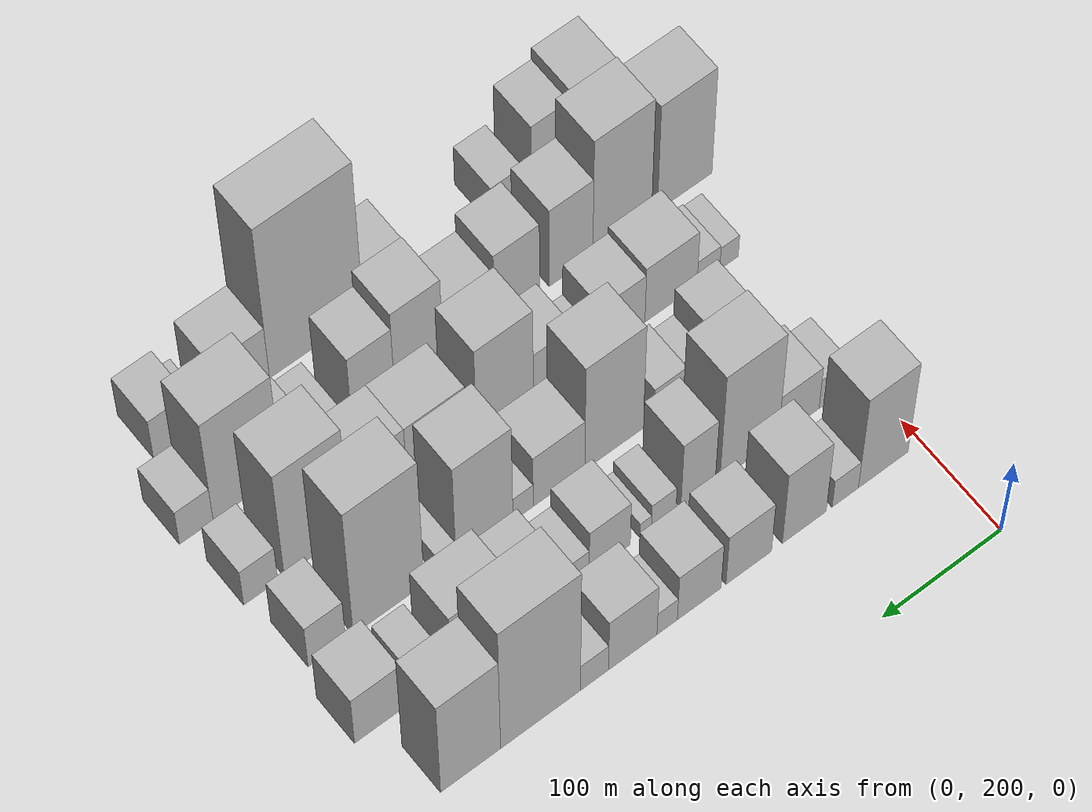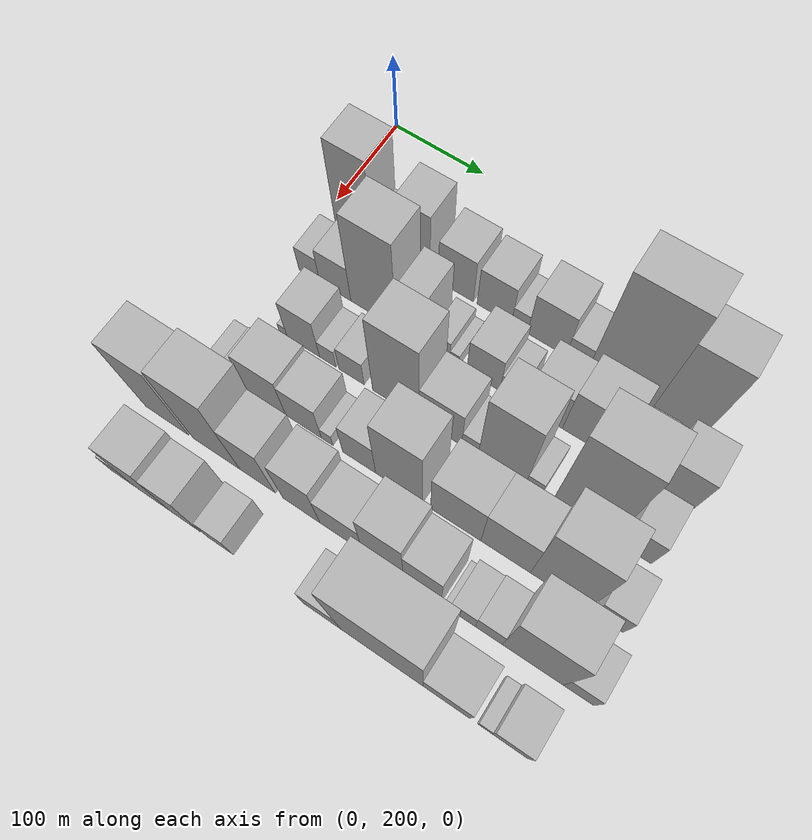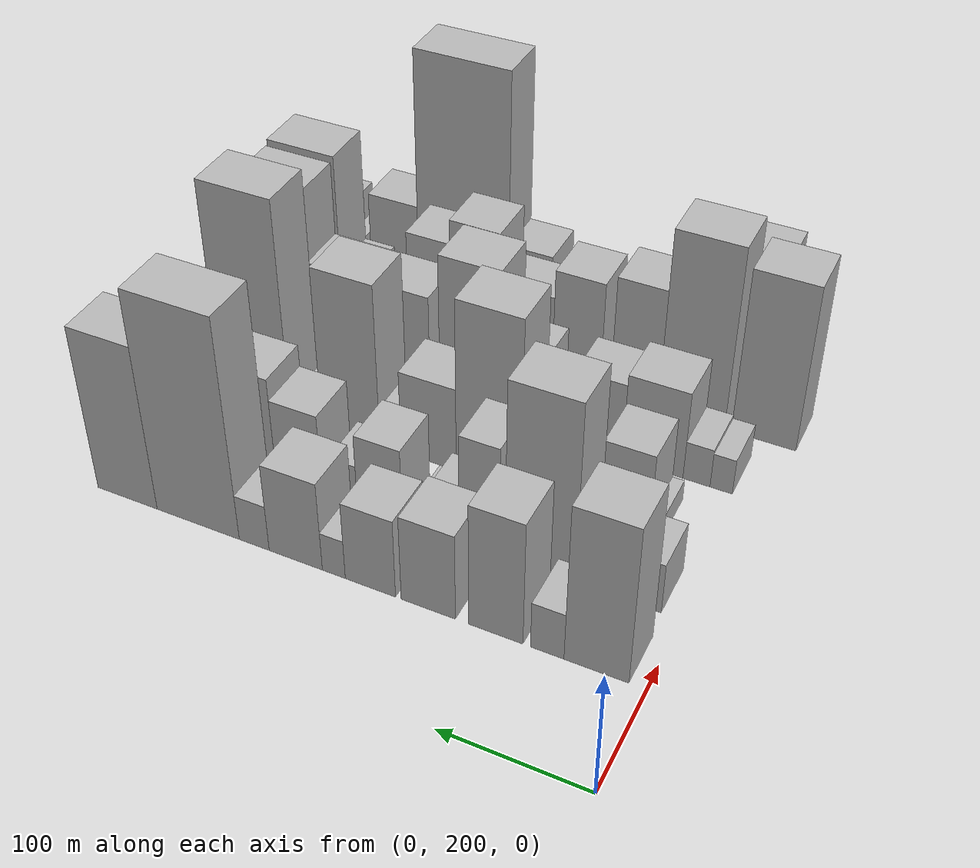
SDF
<sdf version="1.6">
 <world name="default">
  <model name="building_33">
   <static>1</static>
   <pose>100.0000 232.4524 0 0.000000 0.000000 0.000000</pose>
   <link name="link">
    <pose>0 0 64.50 0 0 0</pose>
    <collision name="collision"><geometry><box><size>40.0000 42.0044 129.0000</size></box></geometry></collision>
    <visual name="visual">
     <cast_shadows>0</cast_shadows>
     <geometry><box><size>40.0000 42.0044 129.0000</size></box></geometry>
     <material>
      <script>
       <uri>model://HANNAS_wall/materials/scripts</uri>
       <uri>model://HANNAS_wall/materials/textures</uri>
       <name>vrc/HANNAS_wall</name>
      </script>
     </material>
    </visual>
   </link>
  </model>
  <model name="building_34">
   <static>1</static>
   <pose>100.0000 264.5002 0 0.000000 0.000000 0.000000</pose>
   <link name="link">
    <pose>0 0 19.50 0 0 0</pose>
    <collision name="collision"><geometry><box><size>40.0000 22.0913 39.0000</size></box></geometry></collision>
    <visual name="visual">
     <cast_shadows>0</cast_shadows>
     <geometry><box><size>40.0000 22.0913 39.0000</size></box></geometry>
     <material>
      <script>
       <uri>model://HANNAS_wall/materials/scripts</uri>
       <uri>model://HANNAS_wall/materials/textures</uri>
       <name>vrc/HANNAS_wall</name>
      </script>
     </material>
    </visual>
   </link>
  </model>
  <model name="building_35">
   <static>1</static>
   <pose>100.0000 298.9389 0 0.000000 0.000000 0.000000</pose>
   <link name="link">
    <pose>0 0 51.00 0 0 0</pose>
    <collision name="collision"><geometry><box><size>40.0000 36.7861 102.0000</size></box></geometry></collision>
    <visual name="visual">
     <cast_shadows>0</cast_shadows>
     <geometry><box><size>40.0000 36.7861 102.0000</size></box></geometry>
     <material>
      <script>
       <uri>model://HANNAS_wall/materials/scripts</uri>
       <uri>model://HANNAS_wall/materials/textures</uri>
       <name>vrc/HANNAS_wall</name>
      </script>
     </material>
    </visual>
   </link>
  </model>
  <model name="building_36">
   <static>1</static>
   <pose>100.0000 345.2542 0 0.000000 0.000000 0.000000</pose>
   <link name="link">
    <pose>0 0 36.00 0 0 0</pose>
    <collision name="collision"><geometry><box><size>40.0000 37.8445 72.0000</size></box></geometry></collision>
    <visual name="visual">
     <cast_shadows>0</cast_shadows>
     <geometry><box><size>40.0000 37.8445 72.0000</size></box></geometry>
     <material>
      <script>
       <uri>model://HANNAS_wall/materials/scripts</uri>
       <uri>model://HANNAS_wall/materials/textures</uri>
       <name>vrc/HANNAS_wall</name>
      </script>
     </material>
    </visual>
   </link>
  </model>
  <model name="building_37">
   <static>1</static>
   <pose>100.0000 386.2082 0 0.000000 0.000000 0.000000</pose>
   <link name="link">
    <pose>0 0 33.00 0 0 0</pose>
    <collision name="collision"><geometry><box><size>40.0000 36.0634 66.0000</size></box></geometry></collision>
    <visual name="visual">
     <cast_shadows>0</cast_shadows>
     <geometry><box><size>40.0000 36.0634 66.0000</size></box></geometry>
     <material>
      <script>
       <uri>model://HANNAS_wall/materials/scripts</uri>
       <uri>model://HANNAS_wall/materials/textures</uri>
       <name>vrc/HANNAS_wall</name>
      </script>
     </material>
    </visual>
   </link>
  </model>
  <model name="building_38">
   <static>1</static>
   <pose>100.0000 412.6155 0 0.000000 0.000000 0.000000</pose>
   <link name="link">
    <pose>0 0 16.50 0 0 0</pose>
    <collision name="collision"><geometry><box><size>40.0000 16.7512 33.0000</size></box></geometry></collision>
    <visual name="visual">
     <cast_shadows>0</cast_shadows>
     <geometry><box><size>40.0000 16.7512 33.0000</size></box></geometry>
     <material>
      <script>
       <uri>model://HANNAS_wall/materials/scripts</uri>
       <uri>model://HANNAS_wall/materials/textures</uri>
       <name>vrc/HANNAS_wall</name>
      </script>
     </material>
    </visual>
   </link>
  </model>
  <model name="building_39">
   <static>1</static>
   <pose>100.0000 440.7988 0 0.000000 0.000000 0.000000</pose>
   <link name="link">
    <pose>0 0 37.50 0 0 0</pose>
    <collision name="collision"><geometry><box><size>40.0000 39.6154 75.0000</size></box></geometry></collision>
    <visual name="visual">
     <cast_shadows>0</cast_shadows>
     <geometry><box><size>40.0000 39.6154 75.0000</size></box></geometry>
     <material>
      <script>
       <uri>model://HANNAS_wall/materials/scripts</uri>
       <uri>model://HANNAS_wall/materials/textures</uri>
       <name>vrc/HANNAS_wall</name>
      </script>
     </material>
    </visual>
   </link>
  </model>
  <model name="building_40">
   <static>1</static>
   <pose>100.0000 471.9836 0 0.000000 0.000000 0.000000</pose>
   <link name="link">
    <pose>0 0 19.50 0 0 0</pose>
    <collision name="collision"><geometry><box><size>40.0000 22.7542 39.0000</size></box></geometry></collision>
    <visual name="visual">
     <cast_shadows>0</cast_shadows>
     <geometry><box><size>40.0000 22.7542 39.0000</size></box></geometry>
     <material>
      <script>
       <uri>model://HANNAS_wall/materials/scripts</uri>
       <uri>model://HANNAS_wall/materials/textures</uri>
       <name>vrc/HANNAS_wall</name>
      </script>
     </material>
    </visual>
   </link>
  </model>
  <model name="building_41">
   <static>1</static>
   <pose>100.0000 515.5164 0 0.000000 0.000000 0.000000</pose>
   <link name="link">
    <pose>0 0 91.50 0 0 0</pose>
    <collision name="collision"><geometry><box><size>40.0000 64.3114 183.0000</size></box></geometry></collision>
    <visual name="visual">
     <cast_shadows>0</cast_shadows>
     <geometry><box><size>40.0000 64.3114 183.0000</size></box></geometry>
     <material>
      <script>
       <uri>model://HANNAS_wall/materials/scripts</uri>
       <uri>model://HANNAS_wall/materials/textures</uri>
       <name>vrc/HANNAS_wall</name>
      </script>
     </material>
    </visual>
   </link>
  </model>
  <model name="building_42">
   <static>1</static>
   <pose>100.0000 571.6295 0 0.000000 0.000000 0.000000</pose>
   <link name="link">
    <pose>0 0 69.00 0 0 0</pose>
    <collision name="collision"><geometry><box><size>40.0000 47.9148 138.0000</size></box></geometry></collision>
    <visual name="visual">
     <cast_shadows>0</cast_shadows>
     <geometry><box><size>40.0000 47.9148 138.0000</size></box></geometry>
     <material>
      <script>
       <uri>model://HANNAS_wall/materials/scripts</uri>
       <uri>model://HANNAS_wall/materials/textures</uri>
       <name>vrc/HANNAS_wall</name>
      </script>
     </material>
    </visual>
   </link>
  </model>
  <model name="building_91">
   <static>1</static>
   <pose>160.0000 225.3119 0 0.000000 0.000000 0.000000</pose>
   <link name="link">
    <pose>0 0 21.00 0 0 0</pose>
    <collision name="collision"><geometry><box><size>40.0000 23.4071 42.0000</size></box></geometry></collision>
    <visual name="visual">
     <cast_shadows>0</cast_shadows>
     <geometry><box><size>40.0000 23.4071 42.0000</size></box></geometry>
     <material>
      <script>
       <uri>model://HANNAS_wall/materials/scripts</uri>
       <uri>model://HANNAS_wall/materials/textures</uri>
       <name>vrc/HANNAS_wall</name>
      </script>
     </material>
    </visual>
   </link>
  </model>
  <model name="building_92">
   <static>1</static>
   <pose>160.0000 254.2110 0 0.000000 0.000000 0.000000</pose>
   <link name="link">
    <pose>0 0 30.00 0 0 0</pose>
    <collision name="collision"><geometry><box><size>40.0000 34.3911 60.0000</size></box></geometry></collision>
    <visual name="visual">
     <cast_shadows>0</cast_shadows>
     <geometry><box><size>40.0000 34.3911 60.0000</size></box></geometry>
     <material>
      <script>
       <uri>model://HANNAS_wall/materials/scripts</uri>
       <uri>model://HANNAS_wall/materials/textures</uri>
       <name>vrc/HANNAS_wall</name>
      </script>
     </material>
    </visual>
   </link>
  </model>
  <model name="building_93">
   <static>1</static>
   <pose>160.0000 296.0071 0 0.000000 0.000000 0.000000</pose>
   <link name="link">
    <pose>0 0 75.00 0 0 0</pose>
    <collision name="collision"><geometry><box><size>40.0000 49.2011 150.0000</size></box></geometry></collision>
    <visual name="visual">
     <cast_shadows>0</cast_shadows>
     <geometry><box><size>40.0000 49.2011 150.0000</size></box></geometry>
     <material>
      <script>
       <uri>model://HANNAS_wall/materials/scripts</uri>
       <uri>model://HANNAS_wall/materials/textures</uri>
       <name>vrc/HANNAS_wall</name>
      </script>
     </material>
    </visual>
   </link>
  </model>
  <model name="building_94">
   <static>1</static>
   <pose>160.0000 338.8916 0 0.000000 0.000000 0.000000</pose>
   <link name="link">
    <pose>0 0 46.50 0 0 0</pose>
    <collision name="collision"><geometry><box><size>40.0000 28.5679 93.0000</size></box></geometry></collision>
    <visual name="visual">
     <cast_shadows>0</cast_shadows>
     <geometry><box><size>40.0000 28.5679 93.0000</size></box></geometry>
     <material>
      <script>
       <uri>model://HANNAS_wall/materials/scripts</uri>
       <uri>model://HANNAS_wall/materials/textures</uri>
       <name>vrc/HANNAS_wall</name>
      </script>
     </material>
    </visual>
   </link>
  </model>
  <model name="building_95">
   <static>1</static>
   <pose>160.0000 367.3811 0 0.000000 0.000000 0.000000</pose>
   <link name="link">
    <pose>0 0 18.00 0 0 0</pose>
    <collision name="collision"><geometry><box><size>40.0000 20.4111 36.0000</size></box></geometry></collision>
    <visual name="visual">
     <cast_shadows>0</cast_shadows>
     <geometry><box><size>40.0000 20.4111 36.0000</size></box></geometry>
     <material>
      <script>
       <uri>model://HANNAS_wall/materials/scripts</uri>
       <uri>model://HANNAS_wall/materials/textures</uri>
       <name>vrc/HANNAS_wall</name>
      </script>
     </material>
    </visual>
   </link>
  </model>
  <model name="building_96">
   <static>1</static>
   <pose>160.0000 382.3366 0 0.000000 0.000000 0.000000</pose>
   <link name="link">
    <pose>0 0 10.50 0 0 0</pose>
    <collision name="collision"><geometry><box><size>40.0000 9.5000 21.0000</size></box></geometry></collision>
    <visual name="visual">
     <cast_shadows>0</cast_shadows>
     <geometry><box><size>40.0000 9.5000 21.0000</size></box></geometry>
     <material>
      <script>
       <uri>model://HANNAS_wall/materials/scripts</uri>
       <uri>model://HANNAS_wall/materials/textures</uri>
       <name>vrc/HANNAS_wall</name>
      </script>
     </material>
    </visual>
   </link>
  </model>
  <model name="building_97">
   <static>1</static>
   <pose>160.0000 411.9849 0 0.000000 0.000000 0.000000</pose>
   <link name="link">
    <pose>0 0 31.50 0 0 0</pose>
    <collision name="collision"><geometry><box><size>40.0000 33.7966 63.0000</size></box></geometry></collision>
    <visual name="visual">
     <cast_shadows>0</cast_shadows>
     <geometry><box><size>40.0000 33.7966 63.0000</size></box></geometry>
     <material>
      <script>
       <uri>model://HANNAS_wall/materials/scripts</uri>
       <uri>model://HANNAS_wall/materials/textures</uri>
       <name>vrc/HANNAS_wall</name>
      </script>
     </material>
    </visual>
   </link>
  </model>
  <model name="building_98">
   <static>1</static>
   <pose>160.0000 438.8808 0 0.000000 0.000000 0.000000</pose>
   <link name="link">
    <pose>0 0 18.00 0 0 0</pose>
    <collision name="collision"><geometry><box><size>40.0000 19.9954 36.0000</size></box></geometry></collision>
    <visual name="visual">
     <cast_shadows>0</cast_shadows>
     <geometry><box><size>40.0000 19.9954 36.0000</size></box></geometry>
     <material>
      <script>
       <uri>model://HANNAS_wall/materials/scripts</uri>
       <uri>model://HANNAS_wall/materials/textures</uri>
       <name>vrc/HANNAS_wall</name>
      </script>
     </material>
    </visual>
   </link>
  </model>
  <model name="building_99">
   <static>1</static>
   <pose>160.0000 473.7942 0 0.000000 0.000000 0.000000</pose>
   <link name="link">
    <pose>0 0 34.50 0 0 0</pose>
    <collision name="collision"><geometry><box><size>40.0000 35.8313 69.0000</size></box></geometry></collision>
    <visual name="visual">
     <cast_shadows>0</cast_shadows>
     <geometry><box><size>40.0000 35.8313 69.0000</size></box></geometry>
     <material>
      <script>
       <uri>model://HANNAS_wall/materials/scripts</uri>
       <uri>model://HANNAS_wall/materials/textures</uri>
       <name>vrc/HANNAS_wall</name>
      </script>
     </material>
    </visual>
   </link>
  </model>
  <model name="building_100">
   <static>1</static>
   <pose>160.0000 516.3915 0 0.000000 0.000000 0.000000</pose>
   <link name="link">
    <pose>0 0 43.50 0 0 0</pose>
    <collision name="collision"><geometry><box><size>40.0000 49.3634 87.0000</size></box></geometry></collision>
    <visual name="visual">
     <cast_shadows>0</cast_shadows>
     <geometry><box><size>40.0000 49.3634 87.0000</size></box></geometry>
     <material>
      <script>
       <uri>model://HANNAS_wall/materials/scripts</uri>
       <uri>model://HANNAS_wall/materials/textures</uri>
       <name>vrc/HANNAS_wall</name>
      </script>
     </material>
    </visual>
   </link>
  </model>
  <model name="building_101">
   <static>1</static>
   <pose>160.0000 559.7722 0 0.000000 0.000000 0.000000</pose>
   <link name="link">
    <pose>0 0 24.00 0 0 0</pose>
    <collision name="collision"><geometry><box><size>40.0000 25.3980 48.0000</size></box></geometry></collision>
    <visual name="visual">
     <cast_shadows>0</cast_shadows>
     <geometry><box><size>40.0000 25.3980 48.0000</size></box></geometry>
     <material>
      <script>
       <uri>model://HANNAS_wall/materials/scripts</uri>
       <uri>model://HANNAS_wall/materials/textures</uri>
       <name>vrc/HANNAS_wall</name>
      </script>
     </material>
    </visual>
   </link>
  </model>
  <model name="building_102">
   <static>1</static>
   <pose>160.0000 598.8418 0 0.000000 0.000000 0.000000</pose>
   <link name="link">
    <pose>0 0 34.50 0 0 0</pose>
    <collision name="collision"><geometry><box><size>40.0000 38.7412 69.0000</size></box></geometry></collision>
    <visual name="visual">
     <cast_shadows>0</cast_shadows>
     <geometry><box><size>40.0000 38.7412 69.0000</size></box></geometry>
     <material>
      <script>
       <uri>model://HANNAS_wall/materials/scripts</uri>
       <uri>model://HANNAS_wall/materials/textures</uri>
       <name>vrc/HANNAS_wall</name>
      </script>
     </material>
    </visual>
   </link>
  </model>
  <model name="building_144">
   <static>1</static>
   <pose>220.0000 240.0254 0 0.000000 0.000000 0.000000</pose>
   <link name="link">
    <pose>0 0 9.00 0 0 0</pose>
    <collision name="collision"><geometry><box><size>40.0000 8.4966 18.0000</size></box></geometry></collision>
    <visual name="visual">
     <cast_shadows>0</cast_shadows>
     <geometry><box><size>40.0000 8.4966 18.0000</size></box></geometry>
     <material>
      <script>
       <uri>model://HANNAS_wall/materials/scripts</uri>
       <uri>model://HANNAS_wall/materials/textures</uri>
       <name>vrc/HANNAS_wall</name>
      </script>
     </material>
    </visual>
   </link>
  </model>
  <model name="building_145">
   <static>1</static>
   <pose>220.0000 261.9675 0 0.000000 0.000000 0.000000</pose>
   <link name="link">
    <pose>0 0 34.50 0 0 0</pose>
    <collision name="collision"><geometry><box><size>40.0000 35.3875 69.0000</size></box></geometry></collision>
    <visual name="visual">
     <cast_shadows>0</cast_shadows>
     <geometry><box><size>40.0000 35.3875 69.0000</size></box></geometry>
     <material>
      <script>
       <uri>model://HANNAS_wall/materials/scripts</uri>
       <uri>model://HANNAS_wall/materials/textures</uri>
       <name>vrc/HANNAS_wall</name>
      </script>
     </material>
    </visual>
   </link>
  </model>
  <model name="building_146">
   <static>1</static>
   <pose>220.0000 288.5823 0 0.000000 0.000000 0.000000</pose>
   <link name="link">
    <pose>0 0 16.50 0 0 0</pose>
    <collision name="collision"><geometry><box><size>40.0000 17.8422 33.0000</size></box></geometry></collision>
    <visual name="visual">
     <cast_shadows>0</cast_shadows>
     <geometry><box><size>40.0000 17.8422 33.0000</size></box></geometry>
     <material>
      <script>
       <uri>model://HANNAS_wall/materials/scripts</uri>
       <uri>model://HANNAS_wall/materials/textures</uri>
       <name>vrc/HANNAS_wall</name>
      </script>
     </material>
    </visual>
   </link>
  </model>
  <model name="building_147">
   <static>1</static>
   <pose>220.0000 313.9520 0 0.000000 0.000000 0.000000</pose>
   <link name="link">
    <pose>0 0 22.50 0 0 0</pose>
    <collision name="collision"><geometry><box><size>40.0000 26.8972 45.0000</size></box></geometry></collision>
    <visual name="visual">
     <cast_shadows>0</cast_shadows>
     <geometry><box><size>40.0000 26.8972 45.0000</size></box></geometry>
     <material>
      <script>
       <uri>model://HANNAS_wall/materials/scripts</uri>
       <uri>model://HANNAS_wall/materials/textures</uri>
       <name>vrc/HANNAS_wall</name>
      </script>
     </material>
    </visual>
   </link>
  </model>
  <model name="building_148">
   <static>1</static>
   <pose>220.0000 360.7230 0 0.000000 0.000000 0.000000</pose>
   <link name="link">
    <pose>0 0 73.50 0 0 0</pose>
    <collision name="collision"><geometry><box><size>40.0000 48.6449 147.0000</size></box></geometry></collision>
    <visual name="visual">
     <cast_shadows>0</cast_shadows>
     <geometry><box><size>40.0000 48.6449 147.0000</size></box></geometry>
     <material>
      <script>
       <uri>model://HANNAS_wall/materials/scripts</uri>
       <uri>model://HANNAS_wall/materials/textures</uri>
       <name>vrc/HANNAS_wall</name>
      </script>
     </material>
    </visual>
   </link>
  </model>
  <model name="building_149">
   <static>1</static>
   <pose>220.0000 406.3335 0 0.000000 0.000000 0.000000</pose>
   <link name="link">
    <pose>0 0 36.00 0 0 0</pose>
    <collision name="collision"><geometry><box><size>40.0000 42.5761 72.0000</size></box></geometry></collision>
    <visual name="visual">
     <cast_shadows>0</cast_shadows>
     <geometry><box><size>40.0000 42.5761 72.0000</size></box></geometry>
     <material>
      <script>
       <uri>model://HANNAS_wall/materials/scripts</uri>
       <uri>model://HANNAS_wall/materials/textures</uri>
       <name>vrc/HANNAS_wall</name>
      </script>
     </material>
    </visual>
   </link>
  </model>
  <model name="building_150">
   <static>1</static>
   <pose>220.0000 435.9425 0 0.000000 0.000000 0.000000</pose>
   <link name="link">
    <pose>0 0 16.50 0 0 0</pose>
    <collision name="collision"><geometry><box><size>40.0000 16.6417 33.0000</size></box></geometry></collision>
    <visual name="visual">
     <cast_shadows>0</cast_shadows>
     <geometry><box><size>40.0000 16.6417 33.0000</size></box></geometry>
     <material>
      <script>
       <uri>model://HANNAS_wall/materials/scripts</uri>
       <uri>model://HANNAS_wall/materials/textures</uri>
       <name>vrc/HANNAS_wall</name>
      </script>
     </material>
    </visual>
   </link>
  </model>
  <model name="building_151">
   <static>1</static>
   <pose>220.0000 467.5467 0 0.000000 0.000000 0.000000</pose>
   <link name="link">
    <pose>0 0 69.00 0 0 0</pose>
    <collision name="collision"><geometry><box><size>40.0000 46.5667 138.0000</size></box></geometry></collision>
    <visual name="visual">
     <cast_shadows>0</cast_shadows>
     <geometry><box><size>40.0000 46.5667 138.0000</size></box></geometry>
     <material>
      <script>
       <uri>model://HANNAS_wall/materials/scripts</uri>
       <uri>model://HANNAS_wall/materials/textures</uri>
       <name>vrc/HANNAS_wall</name>
      </script>
     </material>
    </visual>
   </link>
  </model>
  <model name="building_152">
   <static>1</static>
   <pose>220.0000 498.7124 0 0.000000 0.000000 0.000000</pose>
   <link name="link">
    <pose>0 0 15.00 0 0 0</pose>
    <collision name="collision"><geometry><box><size>40.0000 15.7649 30.0000</size></box></geometry></collision>
    <visual name="visual">
     <cast_shadows>0</cast_shadows>
     <geometry><box><size>40.0000 15.7649 30.0000</size></box></geometry>
     <material>
      <script>
       <uri>model://HANNAS_wall/materials/scripts</uri>
       <uri>model://HANNAS_wall/materials/textures</uri>
       <name>vrc/HANNAS_wall</name>
      </script>
     </material>
    </visual>
   </link>
  </model>
  <model name="building_153">
   <static>1</static>
   <pose>220.0000 545.2175 0 0.000000 0.000000 0.000000</pose>
   <link name="link">
    <pose>0 0 91.50 0 0 0</pose>
    <collision name="collision"><geometry><box><size>40.0000 57.2452 183.0000</size></box></geometry></collision>
    <visual name="visual">
     <cast_shadows>0</cast_shadows>
     <geometry><box><size>40.0000 57.2452 183.0000</size></box></geometry>
     <material>
      <script>
       <uri>model://HANNAS_wall/materials/scripts</uri>
       <uri>model://HANNAS_wall/materials/textures</uri>
       <name>vrc/HANNAS_wall</name>
      </script>
     </material>
    </visual>
   </link>
  </model>
  <model name="building_154">
   <static>1</static>
   <pose>220.0000 594.8550 0 0.000000 0.000000 0.000000</pose>
   <link name="link">
    <pose>0 0 30.00 0 0 0</pose>
    <collision name="collision"><geometry><box><size>40.0000 30.0299 60.0000</size></box></geometry></collision>
    <visual name="visual">
     <cast_shadows>0</cast_shadows>
     <geometry><box><size>40.0000 30.0299 60.0000</size></box></geometry>
     <material>
      <script>
       <uri>model://HANNAS_wall/materials/scripts</uri>
       <uri>model://HANNAS_wall/materials/textures</uri>
       <name>vrc/HANNAS_wall</name>
      </script>
     </material>
    </visual>
   </link>
  </model>
  <model name="building_201">
   <static>1</static>
   <pose>280.0000 215.5524 0 0.000000 0.000000 0.000000</pose>
   <link name="link">
    <pose>0 0 15.00 0 0 0</pose>
    <collision name="collision"><geometry><box><size>40.0000 15.8334 30.0000</size></box></geometry></collision>
    <visual name="visual">
     <cast_shadows>0</cast_shadows>
     <geometry><box><size>40.0000 15.8334 30.0000</size></box></geometry>
     <material>
      <script>
       <uri>model://HANNAS_wall/materials/scripts</uri>
       <uri>model://HANNAS_wall/materials/textures</uri>
       <name>vrc/HANNAS_wall</name>
      </script>
     </material>
    </visual>
   </link>
  </model>
  <model name="building_202">
   <static>1</static>
   <pose>280.0000 233.1645 0 0.000000 0.000000 0.000000</pose>
   <link name="link">
    <pose>0 0 16.50 0 0 0</pose>
    <collision name="collision"><geometry><box><size>40.0000 19.3909 33.0000</size></box></geometry></collision>
    <visual name="visual">
     <cast_shadows>0</cast_shadows>
     <geometry><box><size>40.0000 19.3909 33.0000</size></box></geometry>
     <material>
      <script>
       <uri>model://HANNAS_wall/materials/scripts</uri>
       <uri>model://HANNAS_wall/materials/textures</uri>
       <name>vrc/HANNAS_wall</name>
      </script>
     </material>
    </visual>
   </link>
  </model>
  <model name="building_203">
   <static>1</static>
   <pose>280.0000 264.9777 0 0.000000 0.000000 0.000000</pose>
   <link name="link">
    <pose>0 0 37.50 0 0 0</pose>
    <collision name="collision"><geometry><box><size>40.0000 44.2355 75.0000</size></box></geometry></collision>
    <visual name="visual">
     <cast_shadows>0</cast_shadows>
     <geometry><box><size>40.0000 44.2355 75.0000</size></box></geometry>
     <material>
      <script>
       <uri>model://HANNAS_wall/materials/scripts</uri>
       <uri>model://HANNAS_wall/materials/textures</uri>
       <name>vrc/HANNAS_wall</name>
      </script>
     </material>
    </visual>
   </link>
  </model>
  <model name="building_204">
   <static>1</static>
   <pose>280.0000 305.8959 0 0.000000 0.000000 0.000000</pose>
   <link name="link">
    <pose>0 0 33.00 0 0 0</pose>
    <collision name="collision"><geometry><box><size>40.0000 37.6010 66.0000</size></box></geometry></collision>
    <visual name="visual">
     <cast_shadows>0</cast_shadows>
     <geometry><box><size>40.0000 37.6010 66.0000</size></box></geometry>
     <material>
      <script>
       <uri>model://HANNAS_wall/materials/scripts</uri>
       <uri>model://HANNAS_wall/materials/textures</uri>
       <name>vrc/HANNAS_wall</name>
      </script>
     </material>
    </visual>
   </link>
  </model>
  <model name="building_205">
   <static>1</static>
   <pose>280.0000 330.6688 0 0.000000 0.000000 0.000000</pose>
   <link name="link">
    <pose>0 0 12.00 0 0 0</pose>
    <collision name="collision"><geometry><box><size>40.0000 11.9448 24.0000</size></box></geometry></collision>
    <visual name="visual">
     <cast_shadows>0</cast_shadows>
     <geometry><box><size>40.0000 11.9448 24.0000</size></box></geometry>
     <material>
      <script>
       <uri>model://HANNAS_wall/materials/scripts</uri>
       <uri>model://HANNAS_wall/materials/textures</uri>
       <name>vrc/HANNAS_wall</name>
      </script>
     </material>
    </visual>
   </link>
  </model>
  <model name="building_206">
   <static>1</static>
   <pose>280.0000 363.5795 0 0.000000 0.000000 0.000000</pose>
   <link name="link">
    <pose>0 0 33.00 0 0 0</pose>
    <collision name="collision"><geometry><box><size>40.0000 33.8767 66.0000</size></box></geometry></collision>
    <visual name="visual">
     <cast_shadows>0</cast_shadows>
     <geometry><box><size>40.0000 33.8767 66.0000</size></box></geometry>
     <material>
      <script>
       <uri>model://HANNAS_wall/materials/scripts</uri>
       <uri>model://HANNAS_wall/materials/textures</uri>
       <name>vrc/HANNAS_wall</name>
      </script>
     </material>
    </visual>
   </link>
  </model>
  <model name="building_207">
   <static>1</static>
   <pose>280.0000 404.0522 0 0.000000 0.000000 0.000000</pose>
   <link name="link">
    <pose>0 0 64.50 0 0 0</pose>
    <collision name="collision"><geometry><box><size>40.0000 47.0687 129.0000</size></box></geometry></collision>
    <visual name="visual">
     <cast_shadows>0</cast_shadows>
     <geometry><box><size>40.0000 47.0687 129.0000</size></box></geometry>
     <material>
      <script>
       <uri>model://HANNAS_wall/materials/scripts</uri>
       <uri>model://HANNAS_wall/materials/textures</uri>
       <name>vrc/HANNAS_wall</name>
      </script>
     </material>
    </visual>
   </link>
  </model>
  <model name="building_208">
   <static>1</static>
   <pose>280.0000 459.9878 0 0.000000 0.000000 0.000000</pose>
   <link name="link">
    <pose>0 0 45.00 0 0 0</pose>
    <collision name="collision"><geometry><box><size>40.0000 48.8023 90.0000</size></box></geometry></collision>
    <visual name="visual">
     <cast_shadows>0</cast_shadows>
     <geometry><box><size>40.0000 48.8023 90.0000</size></box></geometry>
     <material>
      <script>
       <uri>model://HANNAS_wall/materials/scripts</uri>
       <uri>model://HANNAS_wall/materials/textures</uri>
       <name>vrc/HANNAS_wall</name>
      </script>
     </material>
    </visual>
   </link>
  </model>
  <model name="building_209">
   <static>1</static>
   <pose>280.0000 507.9482 0 0.000000 0.000000 0.000000</pose>
   <link name="link">
    <pose>0 0 45.00 0 0 0</pose>
    <collision name="collision"><geometry><box><size>40.0000 47.1186 90.0000</size></box></geometry></collision>
    <visual name="visual">
     <cast_shadows>0</cast_shadows>
     <geometry><box><size>40.0000 47.1186 90.0000</size></box></geometry>
     <material>
      <script>
       <uri>model://HANNAS_wall/materials/scripts</uri>
       <uri>model://HANNAS_wall/materials/textures</uri>
       <name>vrc/HANNAS_wall</name>
      </script>
     </material>
    </visual>
   </link>
  </model>
  <model name="building_210">
   <static>1</static>
   <pose>280.0000 557.8657 0 0.000000 0.000000 0.000000</pose>
   <link name="link">
    <pose>0 0 75.00 0 0 0</pose>
    <collision name="collision"><geometry><box><size>40.0000 52.7163 150.0000</size></box></geometry></collision>
    <visual name="visual">
     <cast_shadows>0</cast_shadows>
     <geometry><box><size>40.0000 52.7163 150.0000</size></box></geometry>
     <material>
      <script>
       <uri>model://HANNAS_wall/materials/scripts</uri>
       <uri>model://HANNAS_wall/materials/textures</uri>
       <name>vrc/HANNAS_wall</name>
      </script>
     </material>
    </visual>
   </link>
  </model>
  <model name="building_211">
   <static>1</static>
   <pose>280.0000 602.9286 0 0.000000 0.000000 0.000000</pose>
   <link name="link">
    <pose>0 0 25.50 0 0 0</pose>
    <collision name="collision"><geometry><box><size>40.0000 27.4096 51.0000</size></box></geometry></collision>
    <visual name="visual">
     <cast_shadows>0</cast_shadows>
     <geometry><box><size>40.0000 27.4096 51.0000</size></box></geometry>
     <material>
      <script>
       <uri>model://HANNAS_wall/materials/scripts</uri>
       <uri>model://HANNAS_wall/materials/textures</uri>
       <name>vrc/HANNAS_wall</name>
      </script>
     </material>
    </visual>
   </link>
  </model>
  <model name="building_256">
   <static>1</static>
   <pose>340.0000 205.0871 0 0.000000 0.000000 0.000000</pose>
   <link name="link">
    <pose>0 0 70.50 0 0 0</pose>
    <collision name="collision"><geometry><box><size>40.0000 46.8502 141.0000</size></box></geometry></collision>
    <visual name="visual">
     <cast_shadows>0</cast_shadows>
     <geometry><box><size>40.0000 46.8502 141.0000</size></box></geometry>
     <material>
      <script>
       <uri>model://HANNAS_wall/materials/scripts</uri>
       <uri>model://HANNAS_wall/materials/textures</uri>
       <name>vrc/HANNAS_wall</name>
      </script>
     </material>
    </visual>
   </link>
  </model>
  <model name="building_257">
   <static>1</static>
   <pose>340.0000 258.5060 0 0.000000 0.000000 0.000000</pose>
   <link name="link">
    <pose>0 0 78.00 0 0 0</pose>
    <collision name="collision"><geometry><box><size>40.0000 49.9877 156.0000</size></box></geometry></collision>
    <visual name="visual">
     <cast_shadows>0</cast_shadows>
     <geometry><box><size>40.0000 49.9877 156.0000</size></box></geometry>
     <material>
      <script>
       <uri>model://HANNAS_wall/materials/scripts</uri>
       <uri>model://HANNAS_wall/materials/textures</uri>
       <name>vrc/HANNAS_wall</name>
      </script>
     </material>
    </visual>
   </link>
  </model>
  <model name="building_258">
   <static>1</static>
   <pose>340.0000 301.9373 0 0.000000 0.000000 0.000000</pose>
   <link name="link">
    <pose>0 0 52.50 0 0 0</pose>
    <collision name="collision"><geometry><box><size>40.0000 36.8749 105.0000</size></box></geometry></collision>
    <visual name="visual">
     <cast_shadows>0</cast_shadows>
     <geometry><box><size>40.0000 36.8749 105.0000</size></box></geometry>
     <material>
      <script>
       <uri>model://HANNAS_wall/materials/scripts</uri>
       <uri>model://HANNAS_wall/materials/textures</uri>
       <name>vrc/HANNAS_wall</name>
      </script>
     </material>
    </visual>
   </link>
  </model>
  <model name="building_259">
   <static>1</static>
   <pose>340.0000 347.2833 0 0.000000 0.000000 0.000000</pose>
   <link name="link">
    <pose>0 0 48.00 0 0 0</pose>
    <collision name="collision"><geometry><box><size>40.0000 37.8171 96.0000</size></box></geometry></collision>
    <visual name="visual">
     <cast_shadows>0</cast_shadows>
     <geometry><box><size>40.0000 37.8171 96.0000</size></box></geometry>
     <material>
      <script>
       <uri>model://HANNAS_wall/materials/scripts</uri>
       <uri>model://HANNAS_wall/materials/textures</uri>
       <name>vrc/HANNAS_wall</name>
      </script>
     </material>
    </visual>
   </link>
  </model>
  <model name="building_260">
   <static>1</static>
   <pose>340.0000 387.4983 0 0.000000 0.000000 0.000000</pose>
   <link name="link">
    <pose>0 0 36.00 0 0 0</pose>
    <collision name="collision"><geometry><box><size>40.0000 42.6129 72.0000</size></box></geometry></collision>
    <visual name="visual">
     <cast_shadows>0</cast_shadows>
     <geometry><box><size>40.0000 42.6129 72.0000</size></box></geometry>
     <material>
      <script>
       <uri>model://HANNAS_wall/materials/scripts</uri>
       <uri>model://HANNAS_wall/materials/textures</uri>
       <name>vrc/HANNAS_wall</name>
      </script>
     </material>
    </visual>
   </link>
  </model>
  <model name="building_261">
   <static>1</static>
   <pose>340.0000 428.8727 0 0.000000 0.000000 0.000000</pose>
   <link name="link">
    <pose>0 0 57.00 0 0 0</pose>
    <collision name="collision"><geometry><box><size>40.0000 40.1358 114.0000</size></box></geometry></collision>
    <visual name="visual">
     <cast_shadows>0</cast_shadows>
     <geometry><box><size>40.0000 40.1358 114.0000</size></box></geometry>
     <material>
      <script>
       <uri>model://HANNAS_wall/materials/scripts</uri>
       <uri>model://HANNAS_wall/materials/textures</uri>
       <name>vrc/HANNAS_wall</name>
      </script>
     </material>
    </visual>
   </link>
  </model>
  <model name="building_262">
   <static>1</static>
   <pose>340.0000 466.6153 0 0.000000 0.000000 0.000000</pose>
   <link name="link">
    <pose>0 0 46.50 0 0 0</pose>
    <collision name="collision"><geometry><box><size>40.0000 35.3494 93.0000</size></box></geometry></collision>
    <visual name="visual">
     <cast_shadows>0</cast_shadows>
     <geometry><box><size>40.0000 35.3494 93.0000</size></box></geometry>
     <material>
      <script>
       <uri>model://HANNAS_wall/materials/scripts</uri>
       <uri>model://HANNAS_wall/materials/textures</uri>
       <name>vrc/HANNAS_wall</name>
      </script>
     </material>
    </visual>
   </link>
  </model>
  <model name="building_263">
   <static>1</static>
   <pose>340.0000 490.3907 0 0.000000 0.000000 0.000000</pose>
   <link name="link">
    <pose>0 0 7.50 0 0 0</pose>
    <collision name="collision"><geometry><box><size>40.0000 6.2012 15.0000</size></box></geometry></collision>
    <visual name="visual">
     <cast_shadows>0</cast_shadows>
     <geometry><box><size>40.0000 6.2012 15.0000</size></box></geometry>
     <material>
      <script>
       <uri>model://HANNAS_wall/materials/scripts</uri>
       <uri>model://HANNAS_wall/materials/textures</uri>
       <name>vrc/HANNAS_wall</name>
      </script>
     </material>
    </visual>
   </link>
  </model>
  <model name="building_264">
   <static>1</static>
   <pose>340.0000 505.1001 0 0.000000 0.000000 0.000000</pose>
   <link name="link">
    <pose>0 0 19.50 0 0 0</pose>
    <collision name="collision"><geometry><box><size>40.0000 23.2175 39.0000</size></box></geometry></collision>
    <visual name="visual">
     <cast_shadows>0</cast_shadows>
     <geometry><box><size>40.0000 23.2175 39.0000</size></box></geometry>
     <material>
      <script>
       <uri>model://HANNAS_wall/materials/scripts</uri>
       <uri>model://HANNAS_wall/materials/textures</uri>
       <name>vrc/HANNAS_wall</name>
      </script>
     </material>
    </visual>
   </link>
  </model>
  <model name="building_265">
   <static>1</static>
   <pose>340.0000 529.1616 0 0.000000 0.000000 0.000000</pose>
   <link name="link">
    <pose>0 0 22.50 0 0 0</pose>
    <collision name="collision"><geometry><box><size>40.0000 24.9055 45.0000</size></box></geometry></collision>
    <visual name="visual">
     <cast_shadows>0</cast_shadows>
     <geometry><box><size>40.0000 24.9055 45.0000</size></box></geometry>
     <material>
      <script>
       <uri>model://HANNAS_wall/materials/scripts</uri>
       <uri>model://HANNAS_wall/materials/textures</uri>
       <name>vrc/HANNAS_wall</name>
      </script>
     </material>
    </visual>
   </link>
  </model>
  <model name="building_266">
   <static>1</static>
   <pose>340.0000 569.2017 0 0.000000 0.000000 0.000000</pose>
   <link name="link">
    <pose>0 0 70.50 0 0 0</pose>
    <collision name="collision"><geometry><box><size>40.0000 55.1747 141.0000</size></box></geometry></collision>
    <visual name="visual">
     <cast_shadows>0</cast_shadows>
     <geometry><box><size>40.0000 55.1747 141.0000</size></box></geometry>
     <material>
      <script>
       <uri>model://HANNAS_wall/materials/scripts</uri>
       <uri>model://HANNAS_wall/materials/textures</uri>
       <name>vrc/HANNAS_wall</name>
      </script>
     </material>
    </visual>
   </link>
  </model>
  <model name="building_267">
   <static>1</static>
   <pose>340.0000 610.3259 0 0.000000 0.000000 0.000000</pose>
   <link name="link">
    <pose>0 0 24.00 0 0 0</pose>
    <collision name="collision"><geometry><box><size>40.0000 27.0739 48.0000</size></box></geometry></collision>
    <visual name="visual">
     <cast_shadows>0</cast_shadows>
     <geometry><box><size>40.0000 27.0739 48.0000</size></box></geometry>
     <material>
      <script>
       <uri>model://HANNAS_wall/materials/scripts</uri>
       <uri>model://HANNAS_wall/materials/textures</uri>
       <name>vrc/HANNAS_wall</name>
      </script>
     </material>
    </visual>
   </link>
  </model>
  <model name="building_308">
   <static>1</static>
   <pose>400.0000 205.5431 0 0.000000 0.000000 0.000000</pose>
   <link name="link">
    <pose>0 0 21.00 0 0 0</pose>
    <collision name="collision"><geometry><box><size>40.0000 24.0828 42.0000</size></box></geometry></collision>
    <visual name="visual">
     <cast_shadows>0</cast_shadows>
     <geometry><box><size>40.0000 24.0828 42.0000</size></box></geometry>
     <material>
      <script>
       <uri>model://HANNAS_wall/materials/scripts</uri>
       <uri>model://HANNAS_wall/materials/textures</uri>
       <name>vrc/HANNAS_wall</name>
      </script>
     </material>
    </visual>
   </link>
  </model>
  <model name="building_309">
   <static>1</static>
   <pose>400.0000 237.1178 0 0.000000 0.000000 0.000000</pose>
   <link name="link">
    <pose>0 0 55.50 0 0 0</pose>
    <collision name="collision"><geometry><box><size>40.0000 39.0666 111.0000</size></box></geometry></collision>
    <visual name="visual">
     <cast_shadows>0</cast_shadows>
     <geometry><box><size>40.0000 39.0666 111.0000</size></box></geometry>
     <material>
      <script>
       <uri>model://HANNAS_wall/materials/scripts</uri>
       <uri>model://HANNAS_wall/materials/textures</uri>
       <name>vrc/HANNAS_wall</name>
      </script>
     </material>
    </visual>
   </link>
  </model>
  <model name="building_310">
   <static>1</static>
   <pose>400.0000 272.5296 0 0.000000 0.000000 0.000000</pose>
   <link name="link">
    <pose>0 0 48.00 0 0 0</pose>
    <collision name="collision"><geometry><box><size>40.0000 31.7570 96.0000</size></box></geometry></collision>
    <visual name="visual">
     <cast_shadows>0</cast_shadows>
     <geometry><box><size>40.0000 31.7570 96.0000</size></box></geometry>
     <material>
      <script>
       <uri>model://HANNAS_wall/materials/scripts</uri>
       <uri>model://HANNAS_wall/materials/textures</uri>
       <name>vrc/HANNAS_wall</name>
      </script>
     </material>
    </visual>
   </link>
  </model>
  <model name="building_311">
   <static>1</static>
   <pose>400.0000 308.9708 0 0.000000 0.000000 0.000000</pose>
   <link name="link">
    <pose>0 0 25.50 0 0 0</pose>
    <collision name="collision"><geometry><box><size>40.0000 27.1255 51.0000</size></box></geometry></collision>
    <visual name="visual">
     <cast_shadows>0</cast_shadows>
     <geometry><box><size>40.0000 27.1255 51.0000</size></box></geometry>
     <material>
      <script>
       <uri>model://HANNAS_wall/materials/scripts</uri>
       <uri>model://HANNAS_wall/materials/textures</uri>
       <name>vrc/HANNAS_wall</name>
      </script>
     </material>
    </visual>
   </link>
  </model>
  <model name="building_312">
   <static>1</static>
   <pose>400.0000 411.3412 0 0.000000 0.000000 0.000000</pose>
   <link name="link">
    <pose>0 0 30.00 0 0 0</pose>
    <collision name="collision"><geometry><box><size>40.0000 35.8717 60.0000</size></box></geometry></collision>
    <visual name="visual">
     <cast_shadows>0</cast_shadows>
     <geometry><box><size>40.0000 35.8717 60.0000</size></box></geometry>
     <material>
      <script>
       <uri>model://HANNAS_wall/materials/scripts</uri>
       <uri>model://HANNAS_wall/materials/textures</uri>
       <name>vrc/HANNAS_wall</name>
      </script>
     </material>
    </visual>
   </link>
  </model>
  <model name="building_313">
   <static>1</static>
   <pose>400.0000 468.0116 0 0.000000 0.000000 0.000000</pose>
   <link name="link">
    <pose>0 0 103.50 0 0 0</pose>
    <collision name="collision"><geometry><box><size>40.0000 77.4691 207.0000</size></box></geometry></collision>
    <visual name="visual">
     <cast_shadows>0</cast_shadows>
     <geometry><box><size>40.0000 77.4691 207.0000</size></box></geometry>
     <material>
      <script>
       <uri>model://HANNAS_wall/materials/scripts</uri>
       <uri>model://HANNAS_wall/materials/textures</uri>
       <name>vrc/HANNAS_wall</name>
      </script>
     </material>
    </visual>
   </link>
  </model>
  <model name="building_314">
   <static>1</static>
   <pose>400.0000 527.9522 0 0.000000 0.000000 0.000000</pose>
   <link name="link">
    <pose>0 0 36.00 0 0 0</pose>
    <collision name="collision"><geometry><box><size>40.0000 42.4122 72.0000</size></box></geometry></collision>
    <visual name="visual">
     <cast_shadows>0</cast_shadows>
     <geometry><box><size>40.0000 42.4122 72.0000</size></box></geometry>
     <material>
      <script>
       <uri>model://HANNAS_wall/materials/scripts</uri>
       <uri>model://HANNAS_wall/materials/textures</uri>
       <name>vrc/HANNAS_wall</name>
      </script>
     </material>
    </visual>
   </link>
  </model>
  <model name="building_315">
   <static>1</static>
   <pose>400.0000 562.3537 0 0.000000 0.000000 0.000000</pose>
   <link name="link">
    <pose>0 0 13.50 0 0 0</pose>
    <collision name="collision"><geometry><box><size>40.0000 12.3907 27.0000</size></box></geometry></collision>
    <visual name="visual">
     <cast_shadows>0</cast_shadows>
     <geometry><box><size>40.0000 12.3907 27.0000</size></box></geometry>
     <material>
      <script>
       <uri>model://HANNAS_wall/materials/scripts</uri>
       <uri>model://HANNAS_wall/materials/textures</uri>
       <name>vrc/HANNAS_wall</name>
      </script>
     </material>
    </visual>
   </link>
  </model>
  <model name="building_316">
   <static>1</static>
   <pose>400.0000 584.7310 0 0.000000 0.000000 0.000000</pose>
   <link name="link">
    <pose>0 0 27.00 0 0 0</pose>
    <collision name="collision"><geometry><box><size>40.0000 32.3640 54.0000</size></box></geometry></collision>
    <visual name="visual">
     <cast_shadows>0</cast_shadows>
     <geometry><box><size>40.0000 32.3640 54.0000</size></box></geometry>
     <material>
      <script>
       <uri>model://HANNAS_wall/materials/scripts</uri>
       <uri>model://HANNAS_wall/materials/textures</uri>
       <name>vrc/HANNAS_wall</name>
      </script>
     </material>
    </visual>
   </link>
  </model>
 </world>
</sdf>
